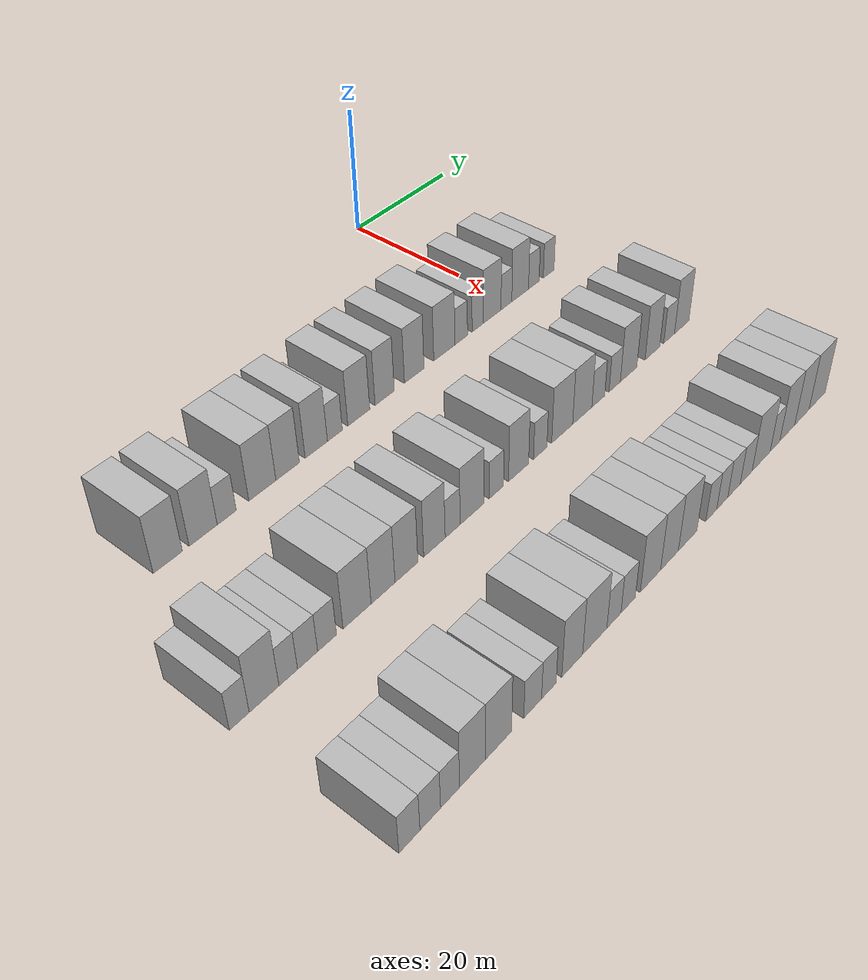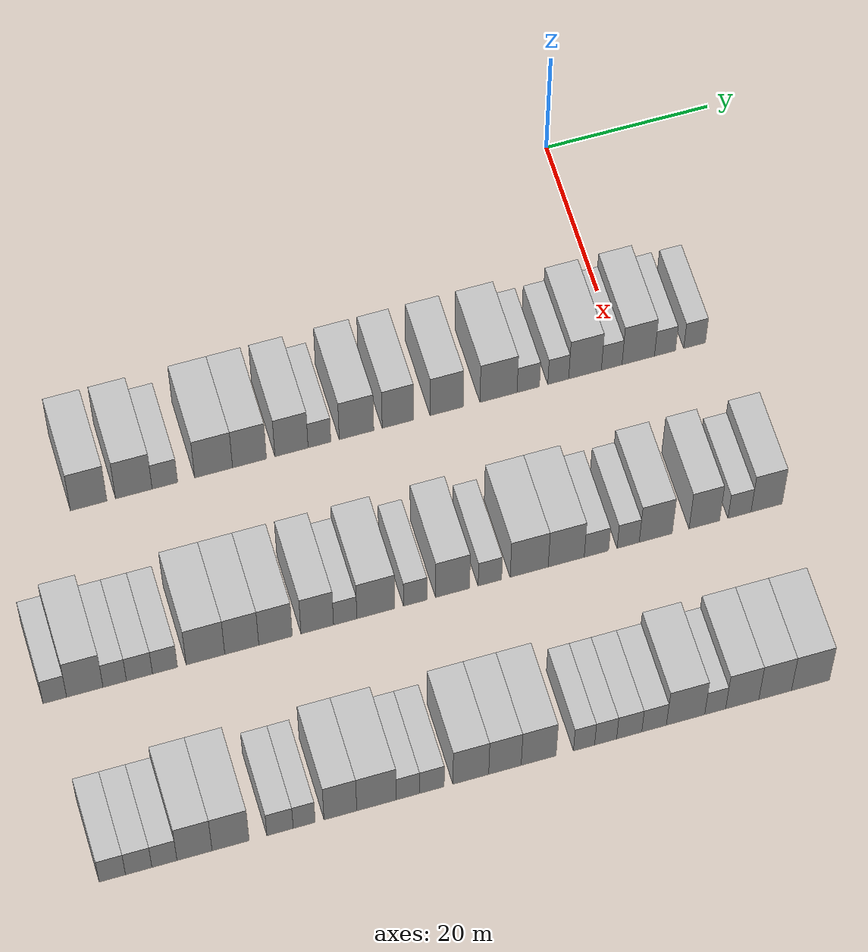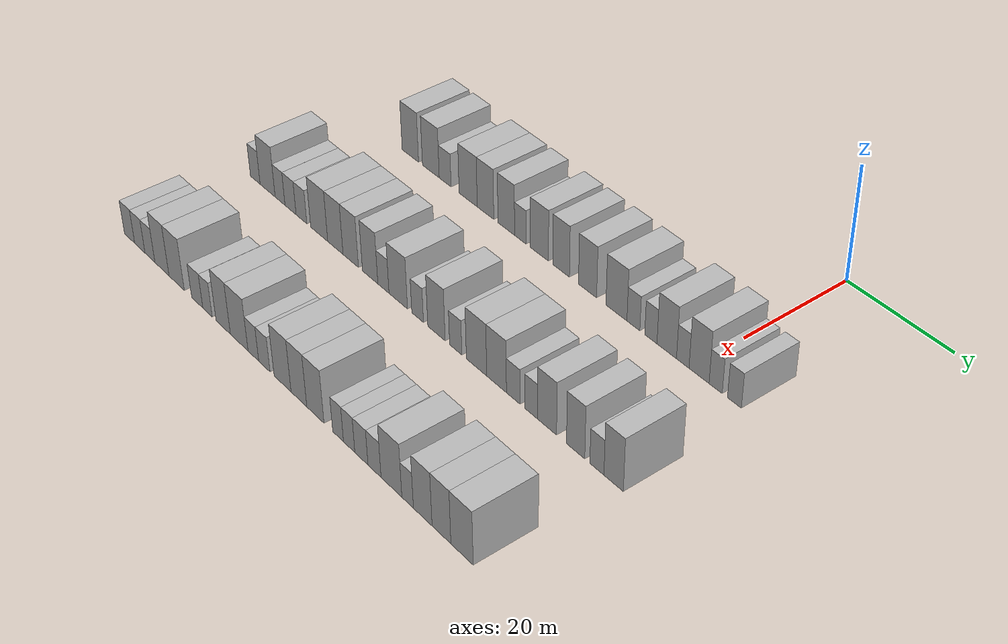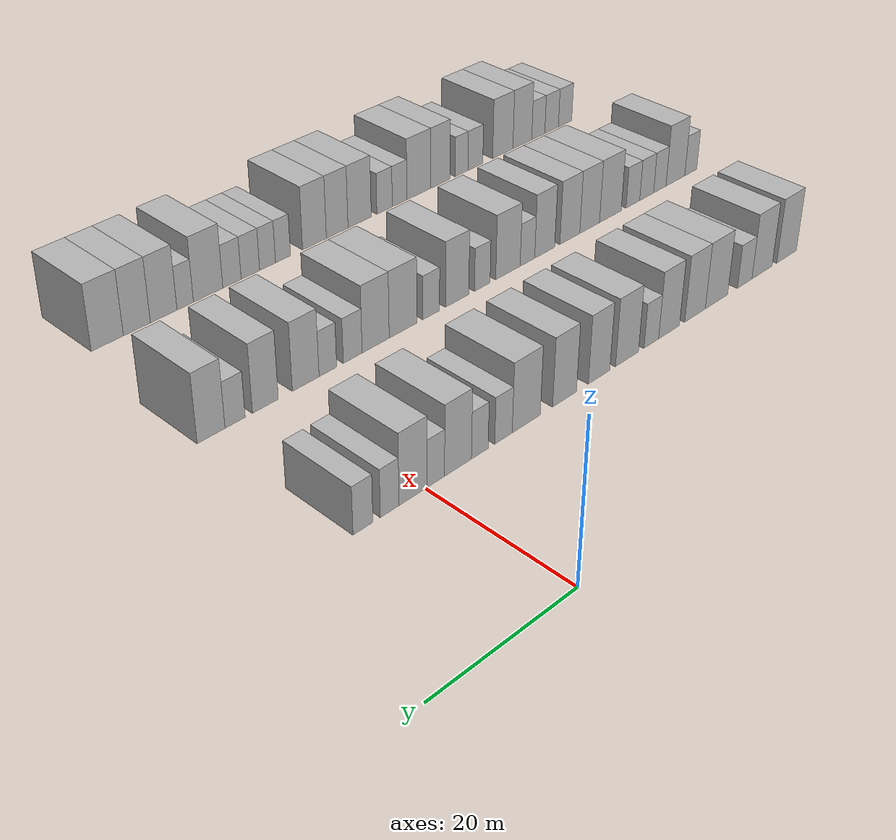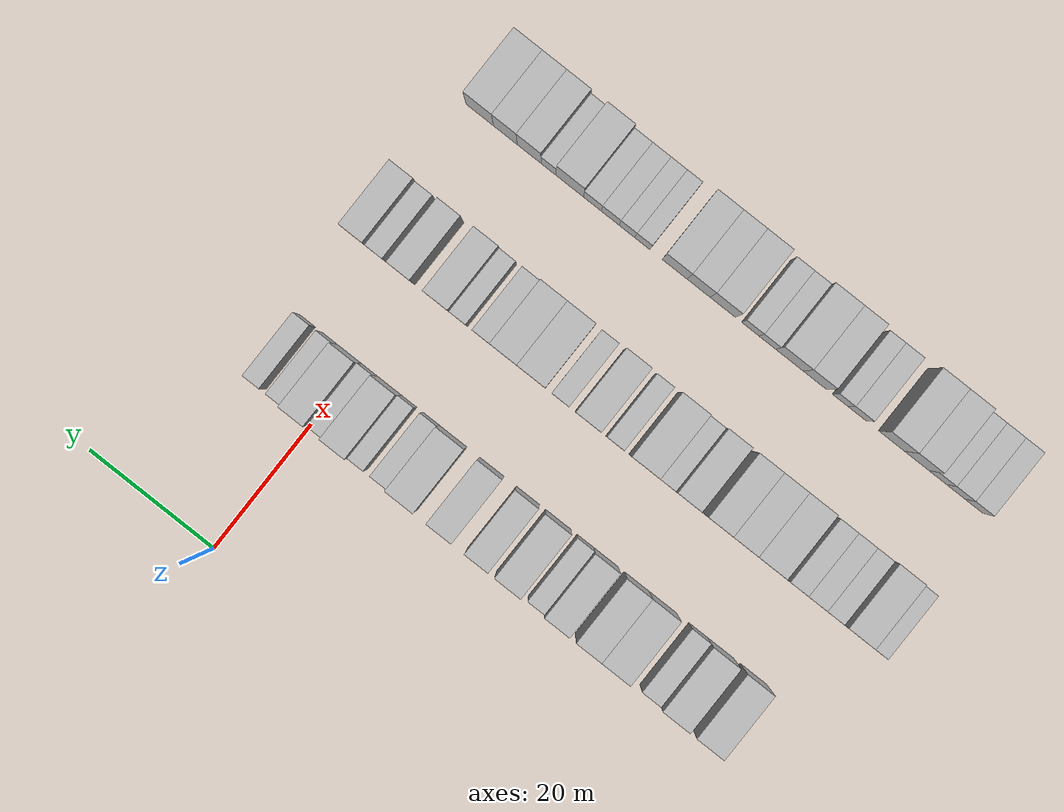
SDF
<sdf version="1.6">
 <world name="default">
  <model name="building_41">
   <static>1</static>
   <pose>25.0000 -63.4730 0 0.000000 0.000000 0.000000</pose>
   <link name="link">
    <pose>0 0 4.50 0 0 0</pose>
    <collision name="collision"><geometry><box><size>10.0000 4.2722 9.0000</size></box></geometry></collision>
    <visual name="visual">
     <cast_shadows>0</cast_shadows>
     <geometry><box><size>10.0000 4.2722 9.0000</size></box></geometry>
     <material>
      <script>
       <uri>model://HANNAS_wall/materials/scripts</uri>
       <uri>model://HANNAS_wall/materials/textures</uri>
       <name>vrc/HANNAS_wall</name>
      </script>
     </material>
    </visual>
   </link>
  </model>
  <model name="building_42">
   <static>1</static>
   <pose>25.0000 -58.1943 0 0.000000 0.000000 0.000000</pose>
   <link name="link">
    <pose>0 0 4.50 0 0 0</pose>
    <collision name="collision"><geometry><box><size>10.0000 4.2851 9.0000</size></box></geometry></collision>
    <visual name="visual">
     <cast_shadows>0</cast_shadows>
     <geometry><box><size>10.0000 4.2851 9.0000</size></box></geometry>
     <material>
      <script>
       <uri>model://HANNAS_wall/materials/scripts</uri>
       <uri>model://HANNAS_wall/materials/textures</uri>
       <name>vrc/HANNAS_wall</name>
      </script>
     </material>
    </visual>
   </link>
  </model>
  <model name="building_43">
   <static>1</static>
   <pose>25.0000 -54.5586 0 0.000000 0.000000 0.000000</pose>
   <link name="link">
    <pose>0 0 3.00 0 0 0</pose>
    <collision name="collision"><geometry><box><size>10.0000 2.9864 6.0000</size></box></geometry></collision>
    <visual name="visual">
     <cast_shadows>0</cast_shadows>
     <geometry><box><size>10.0000 2.9864 6.0000</size></box></geometry>
     <material>
      <script>
       <uri>model://HANNAS_wall/materials/scripts</uri>
       <uri>model://HANNAS_wall/materials/textures</uri>
       <name>vrc/HANNAS_wall</name>
      </script>
     </material>
    </visual>
   </link>
  </model>
  <model name="building_44">
   <static>1</static>
   <pose>25.0000 -48.8377 0 0.000000 0.000000 0.000000</pose>
   <link name="link">
    <pose>0 0 4.50 0 0 0</pose>
    <collision name="collision"><geometry><box><size>10.0000 4.4555 9.0000</size></box></geometry></collision>
    <visual name="visual">
     <cast_shadows>0</cast_shadows>
     <geometry><box><size>10.0000 4.4555 9.0000</size></box></geometry>
     <material>
      <script>
       <uri>model://HANNAS_wall/materials/scripts</uri>
       <uri>model://HANNAS_wall/materials/textures</uri>
       <name>vrc/HANNAS_wall</name>
      </script>
     </material>
    </visual>
   </link>
  </model>
  <model name="building_45">
   <static>1</static>
   <pose>25.0000 -44.6173 0 0.000000 0.000000 0.000000</pose>
   <link name="link">
    <pose>0 0 4.50 0 0 0</pose>
    <collision name="collision"><geometry><box><size>10.0000 3.9854 9.0000</size></box></geometry></collision>
    <visual name="visual">
     <cast_shadows>0</cast_shadows>
     <geometry><box><size>10.0000 3.9854 9.0000</size></box></geometry>
     <material>
      <script>
       <uri>model://HANNAS_wall/materials/scripts</uri>
       <uri>model://HANNAS_wall/materials/textures</uri>
       <name>vrc/HANNAS_wall</name>
      </script>
     </material>
    </visual>
   </link>
  </model>
  <model name="building_46">
   <static>1</static>
   <pose>25.0000 -39.6650 0 0.000000 0.000000 0.000000</pose>
   <link name="link">
    <pose>0 0 4.50 0 0 0</pose>
    <collision name="collision"><geometry><box><size>10.0000 3.9192 9.0000</size></box></geometry></collision>
    <visual name="visual">
     <cast_shadows>0</cast_shadows>
     <geometry><box><size>10.0000 3.9192 9.0000</size></box></geometry>
     <material>
      <script>
       <uri>model://HANNAS_wall/materials/scripts</uri>
       <uri>model://HANNAS_wall/materials/textures</uri>
       <name>vrc/HANNAS_wall</name>
      </script>
     </material>
    </visual>
   </link>
  </model>
  <model name="building_47">
   <static>1</static>
   <pose>25.0000 -36.3617 0 0.000000 0.000000 0.000000</pose>
   <link name="link">
    <pose>0 0 3.00 0 0 0</pose>
    <collision name="collision"><geometry><box><size>10.0000 2.6873 6.0000</size></box></geometry></collision>
    <visual name="visual">
     <cast_shadows>0</cast_shadows>
     <geometry><box><size>10.0000 2.6873 6.0000</size></box></geometry>
     <material>
      <script>
       <uri>model://HANNAS_wall/materials/scripts</uri>
       <uri>model://HANNAS_wall/materials/textures</uri>
       <name>vrc/HANNAS_wall</name>
      </script>
     </material>
    </visual>
   </link>
  </model>
  <model name="building_48">
   <static>1</static>
   <pose>25.0000 -31.9687 0 0.000000 0.000000 0.000000</pose>
   <link name="link">
    <pose>0 0 4.50 0 0 0</pose>
    <collision name="collision"><geometry><box><size>10.0000 4.0987 9.0000</size></box></geometry></collision>
    <visual name="visual">
     <cast_shadows>0</cast_shadows>
     <geometry><box><size>10.0000 4.0987 9.0000</size></box></geometry>
     <material>
      <script>
       <uri>model://HANNAS_wall/materials/scripts</uri>
       <uri>model://HANNAS_wall/materials/textures</uri>
       <name>vrc/HANNAS_wall</name>
      </script>
     </material>
    </visual>
   </link>
  </model>
  <model name="building_49">
   <static>1</static>
   <pose>25.0000 -27.0676 0 0.000000 0.000000 0.000000</pose>
   <link name="link">
    <pose>0 0 4.50 0 0 0</pose>
    <collision name="collision"><geometry><box><size>10.0000 3.7035 9.0000</size></box></geometry></collision>
    <visual name="visual">
     <cast_shadows>0</cast_shadows>
     <geometry><box><size>10.0000 3.7035 9.0000</size></box></geometry>
     <material>
      <script>
       <uri>model://HANNAS_wall/materials/scripts</uri>
       <uri>model://HANNAS_wall/materials/textures</uri>
       <name>vrc/HANNAS_wall</name>
      </script>
     </material>
    </visual>
   </link>
  </model>
  <model name="building_50">
   <static>1</static>
   <pose>25.0000 -21.2439 0 0.000000 0.000000 0.000000</pose>
   <link name="link">
    <pose>0 0 4.50 0 0 0</pose>
    <collision name="collision"><geometry><box><size>10.0000 3.9440 9.0000</size></box></geometry></collision>
    <visual name="visual">
     <cast_shadows>0</cast_shadows>
     <geometry><box><size>10.0000 3.9440 9.0000</size></box></geometry>
     <material>
      <script>
       <uri>model://HANNAS_wall/materials/scripts</uri>
       <uri>model://HANNAS_wall/materials/textures</uri>
       <name>vrc/HANNAS_wall</name>
      </script>
     </material>
    </visual>
   </link>
  </model>
  <model name="building_51">
   <static>1</static>
   <pose>25.0000 -15.0525 0 0.000000 0.000000 0.000000</pose>
   <link name="link">
    <pose>0 0 4.50 0 0 0</pose>
    <collision name="collision"><geometry><box><size>10.0000 4.4387 9.0000</size></box></geometry></collision>
    <visual name="visual">
     <cast_shadows>0</cast_shadows>
     <geometry><box><size>10.0000 4.4387 9.0000</size></box></geometry>
     <material>
      <script>
       <uri>model://HANNAS_wall/materials/scripts</uri>
       <uri>model://HANNAS_wall/materials/textures</uri>
       <name>vrc/HANNAS_wall</name>
      </script>
     </material>
    </visual>
   </link>
  </model>
  <model name="building_52">
   <static>1</static>
   <pose>25.0000 -11.4877 0 0.000000 0.000000 0.000000</pose>
   <link name="link">
    <pose>0 0 3.00 0 0 0</pose>
    <collision name="collision"><geometry><box><size>10.0000 2.6910 6.0000</size></box></geometry></collision>
    <visual name="visual">
     <cast_shadows>0</cast_shadows>
     <geometry><box><size>10.0000 2.6910 6.0000</size></box></geometry>
     <material>
      <script>
       <uri>model://HANNAS_wall/materials/scripts</uri>
       <uri>model://HANNAS_wall/materials/textures</uri>
       <name>vrc/HANNAS_wall</name>
      </script>
     </material>
    </visual>
   </link>
  </model>
  <model name="building_53">
   <static>1</static>
   <pose>25.0000 -7.8880 0 0.000000 0.000000 0.000000</pose>
   <link name="link">
    <pose>0 0 3.00 0 0 0</pose>
    <collision name="collision"><geometry><box><size>10.0000 2.5083 6.0000</size></box></geometry></collision>
    <visual name="visual">
     <cast_shadows>0</cast_shadows>
     <geometry><box><size>10.0000 2.5083 6.0000</size></box></geometry>
     <material>
      <script>
       <uri>model://HANNAS_wall/materials/scripts</uri>
       <uri>model://HANNAS_wall/materials/textures</uri>
       <name>vrc/HANNAS_wall</name>
      </script>
     </material>
    </visual>
   </link>
  </model>
  <model name="building_54">
   <static>1</static>
   <pose>25.0000 -4.6653 0 0.000000 0.000000 0.000000</pose>
   <link name="link">
    <pose>0 0 4.50 0 0 0</pose>
    <collision name="collision"><geometry><box><size>10.0000 3.9371 9.0000</size></box></geometry></collision>
    <visual name="visual">
     <cast_shadows>0</cast_shadows>
     <geometry><box><size>10.0000 3.9371 9.0000</size></box></geometry>
     <material>
      <script>
       <uri>model://HANNAS_wall/materials/scripts</uri>
       <uri>model://HANNAS_wall/materials/textures</uri>
       <name>vrc/HANNAS_wall</name>
      </script>
     </material>
    </visual>
   </link>
  </model>
  <model name="building_55">
   <static>1</static>
   <pose>25.0000 -1.4524 0 0.000000 0.000000 0.000000</pose>
   <link name="link">
    <pose>0 0 3.00 0 0 0</pose>
    <collision name="collision"><geometry><box><size>10.0000 2.4888 6.0000</size></box></geometry></collision>
    <visual name="visual">
     <cast_shadows>0</cast_shadows>
     <geometry><box><size>10.0000 2.4888 6.0000</size></box></geometry>
     <material>
      <script>
       <uri>model://HANNAS_wall/materials/scripts</uri>
       <uri>model://HANNAS_wall/materials/textures</uri>
       <name>vrc/HANNAS_wall</name>
      </script>
     </material>
    </visual>
   </link>
  </model>
  <model name="building_56">
   <static>1</static>
   <pose>25.0000 1.7543 0 0.000000 0.000000 0.000000</pose>
   <link name="link">
    <pose>0 0 4.50 0 0 0</pose>
    <collision name="collision"><geometry><box><size>10.0000 3.9246 9.0000</size></box></geometry></collision>
    <visual name="visual">
     <cast_shadows>0</cast_shadows>
     <geometry><box><size>10.0000 3.9246 9.0000</size></box></geometry>
     <material>
      <script>
       <uri>model://HANNAS_wall/materials/scripts</uri>
       <uri>model://HANNAS_wall/materials/textures</uri>
       <name>vrc/HANNAS_wall</name>
      </script>
     </material>
    </visual>
   </link>
  </model>
  <model name="building_57">
   <static>1</static>
   <pose>25.0000 4.9841 0 0.000000 0.000000 0.000000</pose>
   <link name="link">
    <pose>0 0 3.00 0 0 0</pose>
    <collision name="collision"><geometry><box><size>10.0000 2.5351 6.0000</size></box></geometry></collision>
    <visual name="visual">
     <cast_shadows>0</cast_shadows>
     <geometry><box><size>10.0000 2.5351 6.0000</size></box></geometry>
     <material>
      <script>
       <uri>model://HANNAS_wall/materials/scripts</uri>
       <uri>model://HANNAS_wall/materials/textures</uri>
       <name>vrc/HANNAS_wall</name>
      </script>
     </material>
    </visual>
   </link>
  </model>
  <model name="building_58">
   <static>1</static>
   <pose>25.0000 8.5666 0 0.000000 0.000000 0.000000</pose>
   <link name="link">
    <pose>0 0 3.00 0 0 0</pose>
    <collision name="collision"><geometry><box><size>10.0000 2.6299 6.0000</size></box></geometry></collision>
    <visual name="visual">
     <cast_shadows>0</cast_shadows>
     <geometry><box><size>10.0000 2.6299 6.0000</size></box></geometry>
     <material>
      <script>
       <uri>model://HANNAS_wall/materials/scripts</uri>
       <uri>model://HANNAS_wall/materials/textures</uri>
       <name>vrc/HANNAS_wall</name>
      </script>
     </material>
    </visual>
   </link>
  </model>
  <model name="building_162">
   <static>1</static>
   <pose>47.0000 -72.9935 0 0.000000 0.000000 0.000000</pose>
   <link name="link">
    <pose>0 0 3.00 0 0 0</pose>
    <collision name="collision"><geometry><box><size>10.0000 2.6961 6.0000</size></box></geometry></collision>
    <visual name="visual">
     <cast_shadows>0</cast_shadows>
     <geometry><box><size>10.0000 2.6961 6.0000</size></box></geometry>
     <material>
      <script>
       <uri>model://HANNAS_wall/materials/scripts</uri>
       <uri>model://HANNAS_wall/materials/textures</uri>
       <name>vrc/HANNAS_wall</name>
      </script>
     </material>
    </visual>
   </link>
  </model>
  <model name="building_163">
   <static>1</static>
   <pose>47.0000 -69.5693 0 0.000000 0.000000 0.000000</pose>
   <link name="link">
    <pose>0 0 4.50 0 0 0</pose>
    <collision name="collision"><geometry><box><size>10.0000 4.1523 9.0000</size></box></geometry></collision>
    <visual name="visual">
     <cast_shadows>0</cast_shadows>
     <geometry><box><size>10.0000 4.1523 9.0000</size></box></geometry>
     <material>
      <script>
       <uri>model://HANNAS_wall/materials/scripts</uri>
       <uri>model://HANNAS_wall/materials/textures</uri>
       <name>vrc/HANNAS_wall</name>
      </script>
     </material>
    </visual>
   </link>
  </model>
  <model name="building_164">
   <static>1</static>
   <pose>47.0000 -66.1521 0 0.000000 0.000000 0.000000</pose>
   <link name="link">
    <pose>0 0 3.00 0 0 0</pose>
    <collision name="collision"><geometry><box><size>10.0000 2.6821 6.0000</size></box></geometry></collision>
    <visual name="visual">
     <cast_shadows>0</cast_shadows>
     <geometry><box><size>10.0000 2.6821 6.0000</size></box></geometry>
     <material>
      <script>
       <uri>model://HANNAS_wall/materials/scripts</uri>
       <uri>model://HANNAS_wall/materials/textures</uri>
       <name>vrc/HANNAS_wall</name>
      </script>
     </material>
    </visual>
   </link>
  </model>
  <model name="building_165">
   <static>1</static>
   <pose>47.0000 -63.3249 0 0.000000 0.000000 0.000000</pose>
   <link name="link">
    <pose>0 0 3.00 0 0 0</pose>
    <collision name="collision"><geometry><box><size>10.0000 2.9722 6.0000</size></box></geometry></collision>
    <visual name="visual">
     <cast_shadows>0</cast_shadows>
     <geometry><box><size>10.0000 2.9722 6.0000</size></box></geometry>
     <material>
      <script>
       <uri>model://HANNAS_wall/materials/scripts</uri>
       <uri>model://HANNAS_wall/materials/textures</uri>
       <name>vrc/HANNAS_wall</name>
      </script>
     </material>
    </visual>
   </link>
  </model>
  <model name="building_166">
   <static>1</static>
   <pose>47.0000 -60.4053 0 0.000000 0.000000 0.000000</pose>
   <link name="link">
    <pose>0 0 3.00 0 0 0</pose>
    <collision name="collision"><geometry><box><size>10.0000 2.8670 6.0000</size></box></geometry></collision>
    <visual name="visual">
     <cast_shadows>0</cast_shadows>
     <geometry><box><size>10.0000 2.8670 6.0000</size></box></geometry>
     <material>
      <script>
       <uri>model://HANNAS_wall/materials/scripts</uri>
       <uri>model://HANNAS_wall/materials/textures</uri>
       <name>vrc/HANNAS_wall</name>
      </script>
     </material>
    </visual>
   </link>
  </model>
  <model name="building_167">
   <static>1</static>
   <pose>47.0000 -55.7527 0 0.000000 0.000000 0.000000</pose>
   <link name="link">
    <pose>0 0 4.50 0 0 0</pose>
    <collision name="collision"><geometry><box><size>10.0000 4.4383 9.0000</size></box></geometry></collision>
    <visual name="visual">
     <cast_shadows>0</cast_shadows>
     <geometry><box><size>10.0000 4.4383 9.0000</size></box></geometry>
     <material>
      <script>
       <uri>model://HANNAS_wall/materials/scripts</uri>
       <uri>model://HANNAS_wall/materials/textures</uri>
       <name>vrc/HANNAS_wall</name>
      </script>
     </material>
    </visual>
   </link>
  </model>
  <model name="building_168">
   <static>1</static>
   <pose>47.0000 -51.5730 0 0.000000 0.000000 0.000000</pose>
   <link name="link">
    <pose>0 0 4.50 0 0 0</pose>
    <collision name="collision"><geometry><box><size>10.0000 3.9210 9.0000</size></box></geometry></collision>
    <visual name="visual">
     <cast_shadows>0</cast_shadows>
     <geometry><box><size>10.0000 3.9210 9.0000</size></box></geometry>
     <material>
      <script>
       <uri>model://HANNAS_wall/materials/scripts</uri>
       <uri>model://HANNAS_wall/materials/textures</uri>
       <name>vrc/HANNAS_wall</name>
      </script>
     </material>
    </visual>
   </link>
  </model>
  <model name="building_169">
   <static>1</static>
   <pose>47.0000 -47.6788 0 0.000000 0.000000 0.000000</pose>
   <link name="link">
    <pose>0 0 4.50 0 0 0</pose>
    <collision name="collision"><geometry><box><size>10.0000 3.8675 9.0000</size></box></geometry></collision>
    <visual name="visual">
     <cast_shadows>0</cast_shadows>
     <geometry><box><size>10.0000 3.8675 9.0000</size></box></geometry>
     <material>
      <script>
       <uri>model://HANNAS_wall/materials/scripts</uri>
       <uri>model://HANNAS_wall/materials/textures</uri>
       <name>vrc/HANNAS_wall</name>
      </script>
     </material>
    </visual>
   </link>
  </model>
  <model name="building_170">
   <static>1</static>
   <pose>47.0000 -42.8585 0 0.000000 0.000000 0.000000</pose>
   <link name="link">
    <pose>0 0 4.50 0 0 0</pose>
    <collision name="collision"><geometry><box><size>10.0000 3.7731 9.0000</size></box></geometry></collision>
    <visual name="visual">
     <cast_shadows>0</cast_shadows>
     <geometry><box><size>10.0000 3.7731 9.0000</size></box></geometry>
     <material>
      <script>
       <uri>model://HANNAS_wall/materials/scripts</uri>
       <uri>model://HANNAS_wall/materials/textures</uri>
       <name>vrc/HANNAS_wall</name>
      </script>
     </material>
    </visual>
   </link>
  </model>
  <model name="building_171">
   <static>1</static>
   <pose>47.0000 -39.6209 0 0.000000 0.000000 0.000000</pose>
   <link name="link">
    <pose>0 0 3.00 0 0 0</pose>
    <collision name="collision"><geometry><box><size>10.0000 2.7022 6.0000</size></box></geometry></collision>
    <visual name="visual">
     <cast_shadows>0</cast_shadows>
     <geometry><box><size>10.0000 2.7022 6.0000</size></box></geometry>
     <material>
      <script>
       <uri>model://HANNAS_wall/materials/scripts</uri>
       <uri>model://HANNAS_wall/materials/textures</uri>
       <name>vrc/HANNAS_wall</name>
      </script>
     </material>
    </visual>
   </link>
  </model>
  <model name="building_172">
   <static>1</static>
   <pose>47.0000 -36.0602 0 0.000000 0.000000 0.000000</pose>
   <link name="link">
    <pose>0 0 4.50 0 0 0</pose>
    <collision name="collision"><geometry><box><size>10.0000 4.4190 9.0000</size></box></geometry></collision>
    <visual name="visual">
     <cast_shadows>0</cast_shadows>
     <geometry><box><size>10.0000 4.4190 9.0000</size></box></geometry>
     <material>
      <script>
       <uri>model://HANNAS_wall/materials/scripts</uri>
       <uri>model://HANNAS_wall/materials/textures</uri>
       <name>vrc/HANNAS_wall</name>
      </script>
     </material>
    </visual>
   </link>
  </model>
  <model name="building_173">
   <static>1</static>
   <pose>47.0000 -31.4854 0 0.000000 0.000000 0.000000</pose>
   <link name="link">
    <pose>0 0 3.00 0 0 0</pose>
    <collision name="collision"><geometry><box><size>10.0000 2.7306 6.0000</size></box></geometry></collision>
    <visual name="visual">
     <cast_shadows>0</cast_shadows>
     <geometry><box><size>10.0000 2.7306 6.0000</size></box></geometry>
     <material>
      <script>
       <uri>model://HANNAS_wall/materials/scripts</uri>
       <uri>model://HANNAS_wall/materials/textures</uri>
       <name>vrc/HANNAS_wall</name>
      </script>
     </material>
    </visual>
   </link>
  </model>
  <model name="building_174">
   <static>1</static>
   <pose>47.0000 -27.1313 0 0.000000 0.000000 0.000000</pose>
   <link name="link">
    <pose>0 0 4.50 0 0 0</pose>
    <collision name="collision"><geometry><box><size>10.0000 3.9778 9.0000</size></box></geometry></collision>
    <visual name="visual">
     <cast_shadows>0</cast_shadows>
     <geometry><box><size>10.0000 3.9778 9.0000</size></box></geometry>
     <material>
      <script>
       <uri>model://HANNAS_wall/materials/scripts</uri>
       <uri>model://HANNAS_wall/materials/textures</uri>
       <name>vrc/HANNAS_wall</name>
      </script>
     </material>
    </visual>
   </link>
  </model>
  <model name="building_175">
   <static>1</static>
   <pose>47.0000 -22.7664 0 0.000000 0.000000 0.000000</pose>
   <link name="link">
    <pose>0 0 3.00 0 0 0</pose>
    <collision name="collision"><geometry><box><size>10.0000 2.7520 6.0000</size></box></geometry></collision>
    <visual name="visual">
     <cast_shadows>0</cast_shadows>
     <geometry><box><size>10.0000 2.7520 6.0000</size></box></geometry>
     <material>
      <script>
       <uri>model://HANNAS_wall/materials/scripts</uri>
       <uri>model://HANNAS_wall/materials/textures</uri>
       <name>vrc/HANNAS_wall</name>
      </script>
     </material>
    </visual>
   </link>
  </model>
  <model name="building_176">
   <static>1</static>
   <pose>47.0000 -18.1599 0 0.000000 0.000000 0.000000</pose>
   <link name="link">
    <pose>0 0 4.50 0 0 0</pose>
    <collision name="collision"><geometry><box><size>10.0000 4.4610 9.0000</size></box></geometry></collision>
    <visual name="visual">
     <cast_shadows>0</cast_shadows>
     <geometry><box><size>10.0000 4.4610 9.0000</size></box></geometry>
     <material>
      <script>
       <uri>model://HANNAS_wall/materials/scripts</uri>
       <uri>model://HANNAS_wall/materials/textures</uri>
       <name>vrc/HANNAS_wall</name>
      </script>
     </material>
    </visual>
   </link>
  </model>
  <model name="building_177">
   <static>1</static>
   <pose>47.0000 -13.8104 0 0.000000 0.000000 0.000000</pose>
   <link name="link">
    <pose>0 0 4.50 0 0 0</pose>
    <collision name="collision"><geometry><box><size>10.0000 4.2380 9.0000</size></box></geometry></collision>
    <visual name="visual">
     <cast_shadows>0</cast_shadows>
     <geometry><box><size>10.0000 4.2380 9.0000</size></box></geometry>
     <material>
      <script>
       <uri>model://HANNAS_wall/materials/scripts</uri>
       <uri>model://HANNAS_wall/materials/textures</uri>
       <name>vrc/HANNAS_wall</name>
      </script>
     </material>
    </visual>
   </link>
  </model>
  <model name="building_178">
   <static>1</static>
   <pose>47.0000 -10.2534 0 0.000000 0.000000 0.000000</pose>
   <link name="link">
    <pose>0 0 3.00 0 0 0</pose>
    <collision name="collision"><geometry><box><size>10.0000 2.8760 6.0000</size></box></geometry></collision>
    <visual name="visual">
     <cast_shadows>0</cast_shadows>
     <geometry><box><size>10.0000 2.8760 6.0000</size></box></geometry>
     <material>
      <script>
       <uri>model://HANNAS_wall/materials/scripts</uri>
       <uri>model://HANNAS_wall/materials/textures</uri>
       <name>vrc/HANNAS_wall</name>
      </script>
     </material>
    </visual>
   </link>
  </model>
  <model name="building_179">
   <static>1</static>
   <pose>47.0000 -6.5051 0 0.000000 0.000000 0.000000</pose>
   <link name="link">
    <pose>0 0 3.00 0 0 0</pose>
    <collision name="collision"><geometry><box><size>10.0000 2.6206 6.0000</size></box></geometry></collision>
    <visual name="visual">
     <cast_shadows>0</cast_shadows>
     <geometry><box><size>10.0000 2.6206 6.0000</size></box></geometry>
     <material>
      <script>
       <uri>model://HANNAS_wall/materials/scripts</uri>
       <uri>model://HANNAS_wall/materials/textures</uri>
       <name>vrc/HANNAS_wall</name>
      </script>
     </material>
    </visual>
   </link>
  </model>
  <model name="building_180">
   <static>1</static>
   <pose>47.0000 -3.2465 0 0.000000 0.000000 0.000000</pose>
   <link name="link">
    <pose>0 0 4.50 0 0 0</pose>
    <collision name="collision"><geometry><box><size>10.0000 3.8966 9.0000</size></box></geometry></collision>
    <visual name="visual">
     <cast_shadows>0</cast_shadows>
     <geometry><box><size>10.0000 3.8966 9.0000</size></box></geometry>
     <material>
      <script>
       <uri>model://HANNAS_wall/materials/scripts</uri>
       <uri>model://HANNAS_wall/materials/textures</uri>
       <name>vrc/HANNAS_wall</name>
      </script>
     </material>
    </visual>
   </link>
  </model>
  <model name="building_181">
   <static>1</static>
   <pose>47.0000 2.5112 0 0.000000 0.000000 0.000000</pose>
   <link name="link">
    <pose>0 0 4.50 0 0 0</pose>
    <collision name="collision"><geometry><box><size>10.0000 3.6189 9.0000</size></box></geometry></collision>
    <visual name="visual">
     <cast_shadows>0</cast_shadows>
     <geometry><box><size>10.0000 3.6189 9.0000</size></box></geometry>
     <material>
      <script>
       <uri>model://HANNAS_wall/materials/scripts</uri>
       <uri>model://HANNAS_wall/materials/textures</uri>
       <name>vrc/HANNAS_wall</name>
      </script>
     </material>
    </visual>
   </link>
  </model>
  <model name="building_182">
   <static>1</static>
   <pose>47.0000 6.6887 0 0.000000 0.000000 0.000000</pose>
   <link name="link">
    <pose>0 0 3.00 0 0 0</pose>
    <collision name="collision"><geometry><box><size>10.0000 2.7361 6.0000</size></box></geometry></collision>
    <visual name="visual">
     <cast_shadows>0</cast_shadows>
     <geometry><box><size>10.0000 2.7361 6.0000</size></box></geometry>
     <material>
      <script>
       <uri>model://HANNAS_wall/materials/scripts</uri>
       <uri>model://HANNAS_wall/materials/textures</uri>
       <name>vrc/HANNAS_wall</name>
      </script>
     </material>
    </visual>
   </link>
  </model>
  <model name="building_183">
   <static>1</static>
   <pose>47.0000 9.9101 0 0.000000 0.000000 0.000000</pose>
   <link name="link">
    <pose>0 0 4.50 0 0 0</pose>
    <collision name="collision"><geometry><box><size>10.0000 3.7069 9.0000</size></box></geometry></collision>
    <visual name="visual">
     <cast_shadows>0</cast_shadows>
     <geometry><box><size>10.0000 3.7069 9.0000</size></box></geometry>
     <material>
      <script>
       <uri>model://HANNAS_wall/materials/scripts</uri>
       <uri>model://HANNAS_wall/materials/textures</uri>
       <name>vrc/HANNAS_wall</name>
      </script>
     </material>
    </visual>
   </link>
  </model>
  <model name="building_294">
   <static>1</static>
   <pose>69.0000 -72.1623 0 0.000000 0.000000 0.000000</pose>
   <link name="link">
    <pose>0 0 3.00 0 0 0</pose>
    <collision name="collision"><geometry><box><size>10.0000 2.9489 6.0000</size></box></geometry></collision>
    <visual name="visual">
     <cast_shadows>0</cast_shadows>
     <geometry><box><size>10.0000 2.9489 6.0000</size></box></geometry>
     <material>
      <script>
       <uri>model://HANNAS_wall/materials/scripts</uri>
       <uri>model://HANNAS_wall/materials/textures</uri>
       <name>vrc/HANNAS_wall</name>
      </script>
     </material>
    </visual>
   </link>
  </model>
  <model name="building_295">
   <static>1</static>
   <pose>69.0000 -69.2071 0 0.000000 0.000000 0.000000</pose>
   <link name="link">
    <pose>0 0 3.00 0 0 0</pose>
    <collision name="collision"><geometry><box><size>10.0000 2.9615 6.0000</size></box></geometry></collision>
    <visual name="visual">
     <cast_shadows>0</cast_shadows>
     <geometry><box><size>10.0000 2.9615 6.0000</size></box></geometry>
     <material>
      <script>
       <uri>model://HANNAS_wall/materials/scripts</uri>
       <uri>model://HANNAS_wall/materials/textures</uri>
       <name>vrc/HANNAS_wall</name>
      </script>
     </material>
    </visual>
   </link>
  </model>
  <model name="building_296">
   <static>1</static>
   <pose>69.0000 -66.3211 0 0.000000 0.000000 0.000000</pose>
   <link name="link">
    <pose>0 0 3.00 0 0 0</pose>
    <collision name="collision"><geometry><box><size>10.0000 2.8105 6.0000</size></box></geometry></collision>
    <visual name="visual">
     <cast_shadows>0</cast_shadows>
     <geometry><box><size>10.0000 2.8105 6.0000</size></box></geometry>
     <material>
      <script>
       <uri>model://HANNAS_wall/materials/scripts</uri>
       <uri>model://HANNAS_wall/materials/textures</uri>
       <name>vrc/HANNAS_wall</name>
      </script>
     </material>
    </visual>
   </link>
  </model>
  <model name="building_297">
   <static>1</static>
   <pose>69.0000 -62.9411 0 0.000000 0.000000 0.000000</pose>
   <link name="link">
    <pose>0 0 4.50 0 0 0</pose>
    <collision name="collision"><geometry><box><size>10.0000 3.9495 9.0000</size></box></geometry></collision>
    <visual name="visual">
     <cast_shadows>0</cast_shadows>
     <geometry><box><size>10.0000 3.9495 9.0000</size></box></geometry>
     <material>
      <script>
       <uri>model://HANNAS_wall/materials/scripts</uri>
       <uri>model://HANNAS_wall/materials/textures</uri>
       <name>vrc/HANNAS_wall</name>
      </script>
     </material>
    </visual>
   </link>
  </model>
  <model name="building_298">
   <static>1</static>
   <pose>69.0000 -58.8820 0 0.000000 0.000000 0.000000</pose>
   <link name="link">
    <pose>0 0 4.50 0 0 0</pose>
    <collision name="collision"><geometry><box><size>10.0000 4.1688 9.0000</size></box></geometry></collision>
    <visual name="visual">
     <cast_shadows>0</cast_shadows>
     <geometry><box><size>10.0000 4.1688 9.0000</size></box></geometry>
     <material>
      <script>
       <uri>model://HANNAS_wall/materials/scripts</uri>
       <uri>model://HANNAS_wall/materials/textures</uri>
       <name>vrc/HANNAS_wall</name>
      </script>
     </material>
    </visual>
   </link>
  </model>
  <model name="building_299">
   <static>1</static>
   <pose>69.0000 -53.3110 0 0.000000 0.000000 0.000000</pose>
   <link name="link">
    <pose>0 0 3.00 0 0 0</pose>
    <collision name="collision"><geometry><box><size>10.0000 2.9732 6.0000</size></box></geometry></collision>
    <visual name="visual">
     <cast_shadows>0</cast_shadows>
     <geometry><box><size>10.0000 2.9732 6.0000</size></box></geometry>
     <material>
      <script>
       <uri>model://HANNAS_wall/materials/scripts</uri>
       <uri>model://HANNAS_wall/materials/textures</uri>
       <name>vrc/HANNAS_wall</name>
      </script>
     </material>
    </visual>
   </link>
  </model>
  <model name="building_300">
   <static>1</static>
   <pose>69.0000 -50.5813 0 0.000000 0.000000 0.000000</pose>
   <link name="link">
    <pose>0 0 3.00 0 0 0</pose>
    <collision name="collision"><geometry><box><size>10.0000 2.4861 6.0000</size></box></geometry></collision>
    <visual name="visual">
     <cast_shadows>0</cast_shadows>
     <geometry><box><size>10.0000 2.4861 6.0000</size></box></geometry>
     <material>
      <script>
       <uri>model://HANNAS_wall/materials/scripts</uri>
       <uri>model://HANNAS_wall/materials/textures</uri>
       <name>vrc/HANNAS_wall</name>
      </script>
     </material>
    </visual>
   </link>
  </model>
  <model name="building_301">
   <static>1</static>
   <pose>69.0000 -46.4815 0 0.000000 0.000000 0.000000</pose>
   <link name="link">
    <pose>0 0 4.50 0 0 0</pose>
    <collision name="collision"><geometry><box><size>10.0000 3.7135 9.0000</size></box></geometry></collision>
    <visual name="visual">
     <cast_shadows>0</cast_shadows>
     <geometry><box><size>10.0000 3.7135 9.0000</size></box></geometry>
     <material>
      <script>
       <uri>model://HANNAS_wall/materials/scripts</uri>
       <uri>model://HANNAS_wall/materials/textures</uri>
       <name>vrc/HANNAS_wall</name>
      </script>
     </material>
    </visual>
   </link>
  </model>
  <model name="building_302">
   <static>1</static>
   <pose>69.0000 -42.3830 0 0.000000 0.000000 0.000000</pose>
   <link name="link">
    <pose>0 0 4.50 0 0 0</pose>
    <collision name="collision"><geometry><box><size>10.0000 4.4835 9.0000</size></box></geometry></collision>
    <visual name="visual">
     <cast_shadows>0</cast_shadows>
     <geometry><box><size>10.0000 4.4835 9.0000</size></box></geometry>
     <material>
      <script>
       <uri>model://HANNAS_wall/materials/scripts</uri>
       <uri>model://HANNAS_wall/materials/textures</uri>
       <name>vrc/HANNAS_wall</name>
      </script>
     </material>
    </visual>
   </link>
  </model>
  <model name="building_303">
   <static>1</static>
   <pose>69.0000 -38.8026 0 0.000000 0.000000 0.000000</pose>
   <link name="link">
    <pose>0 0 3.00 0 0 0</pose>
    <collision name="collision"><geometry><box><size>10.0000 2.6771 6.0000</size></box></geometry></collision>
    <visual name="visual">
     <cast_shadows>0</cast_shadows>
     <geometry><box><size>10.0000 2.6771 6.0000</size></box></geometry>
     <material>
      <script>
       <uri>model://HANNAS_wall/materials/scripts</uri>
       <uri>model://HANNAS_wall/materials/textures</uri>
       <name>vrc/HANNAS_wall</name>
      </script>
     </material>
    </visual>
   </link>
  </model>
  <model name="building_304">
   <static>1</static>
   <pose>69.0000 -36.0710 0 0.000000 0.000000 0.000000</pose>
   <link name="link">
    <pose>0 0 3.00 0 0 0</pose>
    <collision name="collision"><geometry><box><size>10.0000 2.7862 6.0000</size></box></geometry></collision>
    <visual name="visual">
     <cast_shadows>0</cast_shadows>
     <geometry><box><size>10.0000 2.7862 6.0000</size></box></geometry>
     <material>
      <script>
       <uri>model://HANNAS_wall/materials/scripts</uri>
       <uri>model://HANNAS_wall/materials/textures</uri>
       <name>vrc/HANNAS_wall</name>
      </script>
     </material>
    </visual>
   </link>
  </model>
  <model name="building_305">
   <static>1</static>
   <pose>69.0000 -31.6312 0 0.000000 0.000000 0.000000</pose>
   <link name="link">
    <pose>0 0 4.50 0 0 0</pose>
    <collision name="collision"><geometry><box><size>10.0000 4.0935 9.0000</size></box></geometry></collision>
    <visual name="visual">
     <cast_shadows>0</cast_shadows>
     <geometry><box><size>10.0000 4.0935 9.0000</size></box></geometry>
     <material>
      <script>
       <uri>model://HANNAS_wall/materials/scripts</uri>
       <uri>model://HANNAS_wall/materials/textures</uri>
       <name>vrc/HANNAS_wall</name>
      </script>
     </material>
    </visual>
   </link>
  </model>
  <model name="building_306">
   <static>1</static>
   <pose>69.0000 -27.7222 0 0.000000 0.000000 0.000000</pose>
   <link name="link">
    <pose>0 0 4.50 0 0 0</pose>
    <collision name="collision"><geometry><box><size>10.0000 3.7244 9.0000</size></box></geometry></collision>
    <visual name="visual">
     <cast_shadows>0</cast_shadows>
     <geometry><box><size>10.0000 3.7244 9.0000</size></box></geometry>
     <material>
      <script>
       <uri>model://HANNAS_wall/materials/scripts</uri>
       <uri>model://HANNAS_wall/materials/textures</uri>
       <name>vrc/HANNAS_wall</name>
      </script>
     </material>
    </visual>
   </link>
  </model>
  <model name="building_307">
   <static>1</static>
   <pose>69.0000 -23.8586 0 0.000000 0.000000 0.000000</pose>
   <link name="link">
    <pose>0 0 4.50 0 0 0</pose>
    <collision name="collision"><geometry><box><size>10.0000 4.0029 9.0000</size></box></geometry></collision>
    <visual name="visual">
     <cast_shadows>0</cast_shadows>
     <geometry><box><size>10.0000 4.0029 9.0000</size></box></geometry>
     <material>
      <script>
       <uri>model://HANNAS_wall/materials/scripts</uri>
       <uri>model://HANNAS_wall/materials/textures</uri>
       <name>vrc/HANNAS_wall</name>
      </script>
     </material>
    </visual>
   </link>
  </model>
  <model name="building_308">
   <static>1</static>
   <pose>69.0000 -18.6391 0 0.000000 0.000000 0.000000</pose>
   <link name="link">
    <pose>0 0 3.00 0 0 0</pose>
    <collision name="collision"><geometry><box><size>10.0000 2.4362 6.0000</size></box></geometry></collision>
    <visual name="visual">
     <cast_shadows>0</cast_shadows>
     <geometry><box><size>10.0000 2.4362 6.0000</size></box></geometry>
     <material>
      <script>
       <uri>model://HANNAS_wall/materials/scripts</uri>
       <uri>model://HANNAS_wall/materials/textures</uri>
       <name>vrc/HANNAS_wall</name>
      </script>
     </material>
    </visual>
   </link>
  </model>
  <model name="building_309">
   <static>1</static>
   <pose>69.0000 -16.1506 0 0.000000 0.000000 0.000000</pose>
   <link name="link">
    <pose>0 0 3.00 0 0 0</pose>
    <collision name="collision"><geometry><box><size>10.0000 2.5408 6.0000</size></box></geometry></collision>
    <visual name="visual">
     <cast_shadows>0</cast_shadows>
     <geometry><box><size>10.0000 2.5408 6.0000</size></box></geometry>
     <material>
      <script>
       <uri>model://HANNAS_wall/materials/scripts</uri>
       <uri>model://HANNAS_wall/materials/textures</uri>
       <name>vrc/HANNAS_wall</name>
      </script>
     </material>
    </visual>
   </link>
  </model>
  <model name="building_310">
   <static>1</static>
   <pose>69.0000 -13.4256 0 0.000000 0.000000 0.000000</pose>
   <link name="link">
    <pose>0 0 3.00 0 0 0</pose>
    <collision name="collision"><geometry><box><size>10.0000 2.9092 6.0000</size></box></geometry></collision>
    <visual name="visual">
     <cast_shadows>0</cast_shadows>
     <geometry><box><size>10.0000 2.9092 6.0000</size></box></geometry>
     <material>
      <script>
       <uri>model://HANNAS_wall/materials/scripts</uri>
       <uri>model://HANNAS_wall/materials/textures</uri>
       <name>vrc/HANNAS_wall</name>
      </script>
     </material>
    </visual>
   </link>
  </model>
  <model name="building_311">
   <static>1</static>
   <pose>69.0000 -10.5487 0 0.000000 0.000000 0.000000</pose>
   <link name="link">
    <pose>0 0 3.00 0 0 0</pose>
    <collision name="collision"><geometry><box><size>10.0000 2.8446 6.0000</size></box></geometry></collision>
    <visual name="visual">
     <cast_shadows>0</cast_shadows>
     <geometry><box><size>10.0000 2.8446 6.0000</size></box></geometry>
     <material>
      <script>
       <uri>model://HANNAS_wall/materials/scripts</uri>
       <uri>model://HANNAS_wall/materials/textures</uri>
       <name>vrc/HANNAS_wall</name>
      </script>
     </material>
    </visual>
   </link>
  </model>
  <model name="building_312">
   <static>1</static>
   <pose>69.0000 -6.9056 0 0.000000 0.000000 0.000000</pose>
   <link name="link">
    <pose>0 0 4.50 0 0 0</pose>
    <collision name="collision"><geometry><box><size>10.0000 4.4415 9.0000</size></box></geometry></collision>
    <visual name="visual">
     <cast_shadows>0</cast_shadows>
     <geometry><box><size>10.0000 4.4415 9.0000</size></box></geometry>
     <material>
      <script>
       <uri>model://HANNAS_wall/materials/scripts</uri>
       <uri>model://HANNAS_wall/materials/textures</uri>
       <name>vrc/HANNAS_wall</name>
      </script>
     </material>
    </visual>
   </link>
  </model>
  <model name="building_313">
   <static>1</static>
   <pose>69.0000 -3.4711 0 0.000000 0.000000 0.000000</pose>
   <link name="link">
    <pose>0 0 3.00 0 0 0</pose>
    <collision name="collision"><geometry><box><size>10.0000 2.4275 6.0000</size></box></geometry></collision>
    <visual name="visual">
     <cast_shadows>0</cast_shadows>
     <geometry><box><size>10.0000 2.4275 6.0000</size></box></geometry>
     <material>
      <script>
       <uri>model://HANNAS_wall/materials/scripts</uri>
       <uri>model://HANNAS_wall/materials/textures</uri>
       <name>vrc/HANNAS_wall</name>
      </script>
     </material>
    </visual>
   </link>
  </model>
  <model name="building_314">
   <static>1</static>
   <pose>69.0000 -0.3294 0 0.000000 0.000000 0.000000</pose>
   <link name="link">
    <pose>0 0 4.50 0 0 0</pose>
    <collision name="collision"><geometry><box><size>10.0000 3.8561 9.0000</size></box></geometry></collision>
    <visual name="visual">
     <cast_shadows>0</cast_shadows>
     <geometry><box><size>10.0000 3.8561 9.0000</size></box></geometry>
     <material>
      <script>
       <uri>model://HANNAS_wall/materials/scripts</uri>
       <uri>model://HANNAS_wall/materials/textures</uri>
       <name>vrc/HANNAS_wall</name>
      </script>
     </material>
    </visual>
   </link>
  </model>
  <model name="building_315">
   <static>1</static>
   <pose>69.0000 3.5069 0 0.000000 0.000000 0.000000</pose>
   <link name="link">
    <pose>0 0 4.50 0 0 0</pose>
    <collision name="collision"><geometry><box><size>10.0000 3.8164 9.0000</size></box></geometry></collision>
    <visual name="visual">
     <cast_shadows>0</cast_shadows>
     <geometry><box><size>10.0000 3.8164 9.0000</size></box></geometry>
     <material>
      <script>
       <uri>model://HANNAS_wall/materials/scripts</uri>
       <uri>model://HANNAS_wall/materials/textures</uri>
       <name>vrc/HANNAS_wall</name>
      </script>
     </material>
    </visual>
   </link>
  </model>
  <model name="building_316">
   <static>1</static>
   <pose>69.0000 7.6316 0 0.000000 0.000000 0.000000</pose>
   <link name="link">
    <pose>0 0 4.50 0 0 0</pose>
    <collision name="collision"><geometry><box><size>10.0000 4.4330 9.0000</size></box></geometry></collision>
    <visual name="visual">
     <cast_shadows>0</cast_shadows>
     <geometry><box><size>10.0000 4.4330 9.0000</size></box></geometry>
     <material>
      <script>
       <uri>model://HANNAS_wall/materials/scripts</uri>
       <uri>model://HANNAS_wall/materials/textures</uri>
       <name>vrc/HANNAS_wall</name>
      </script>
     </material>
    </visual>
   </link>
  </model>
 </world>
</sdf>
